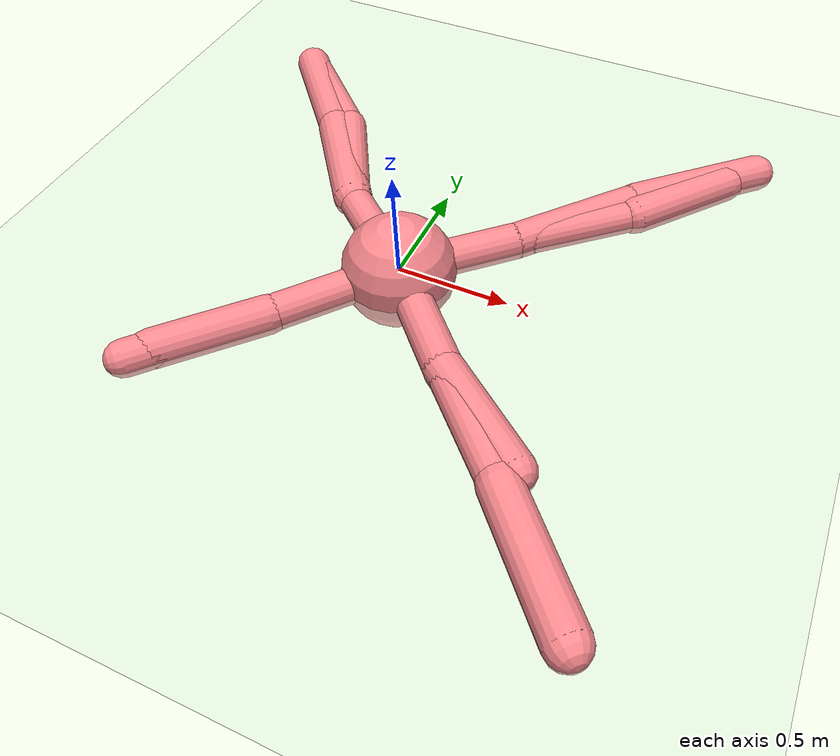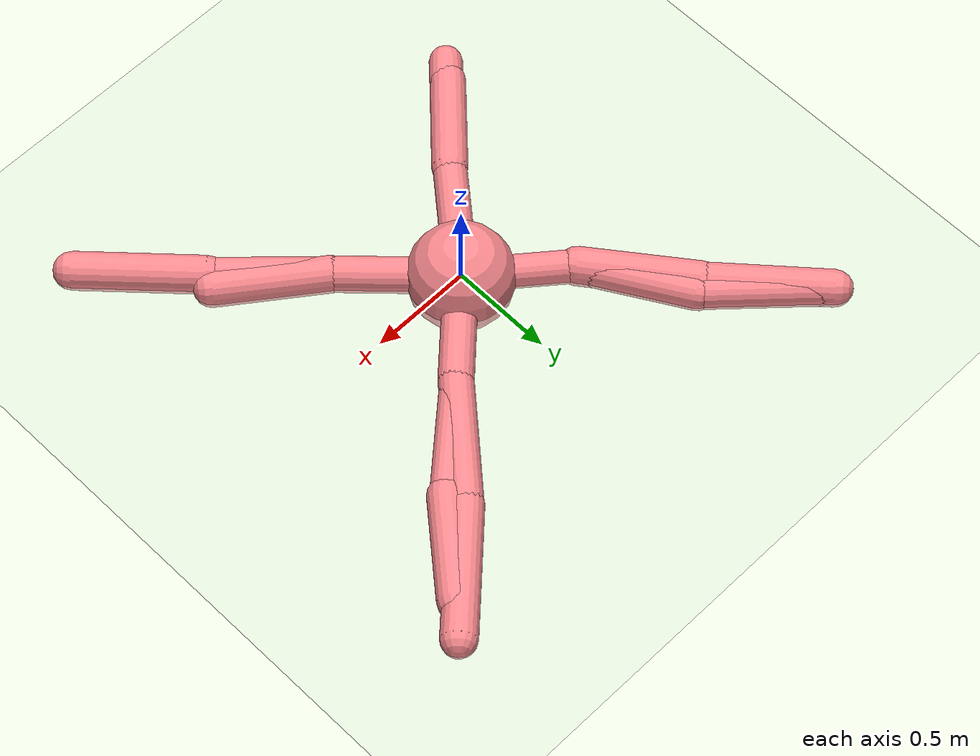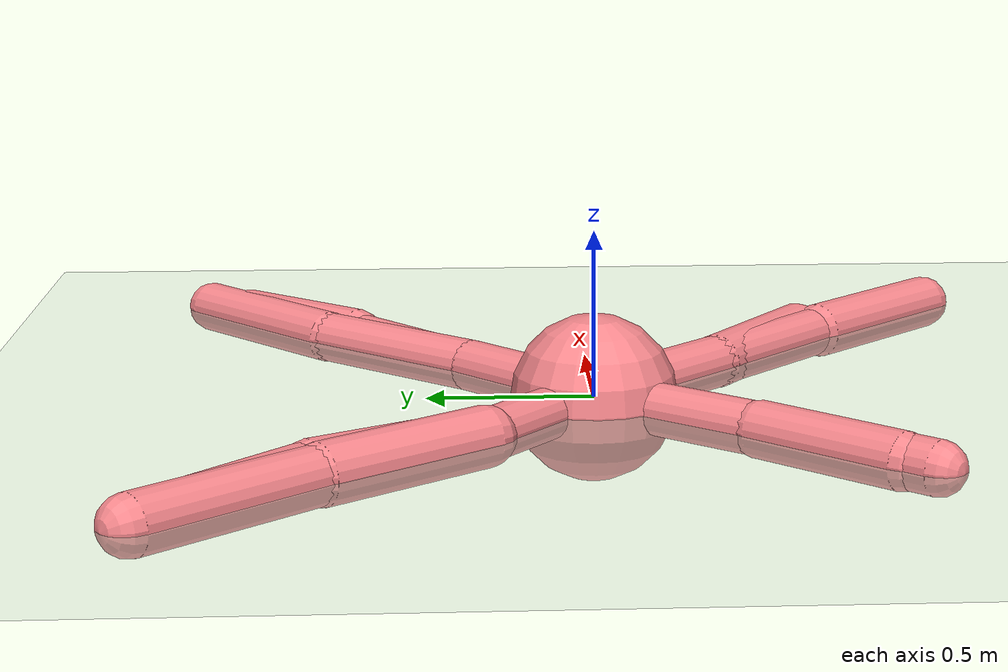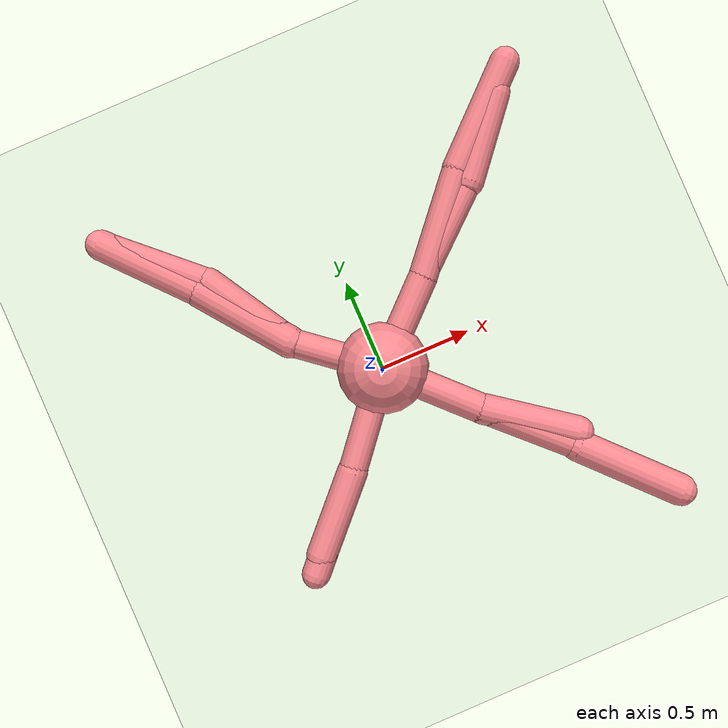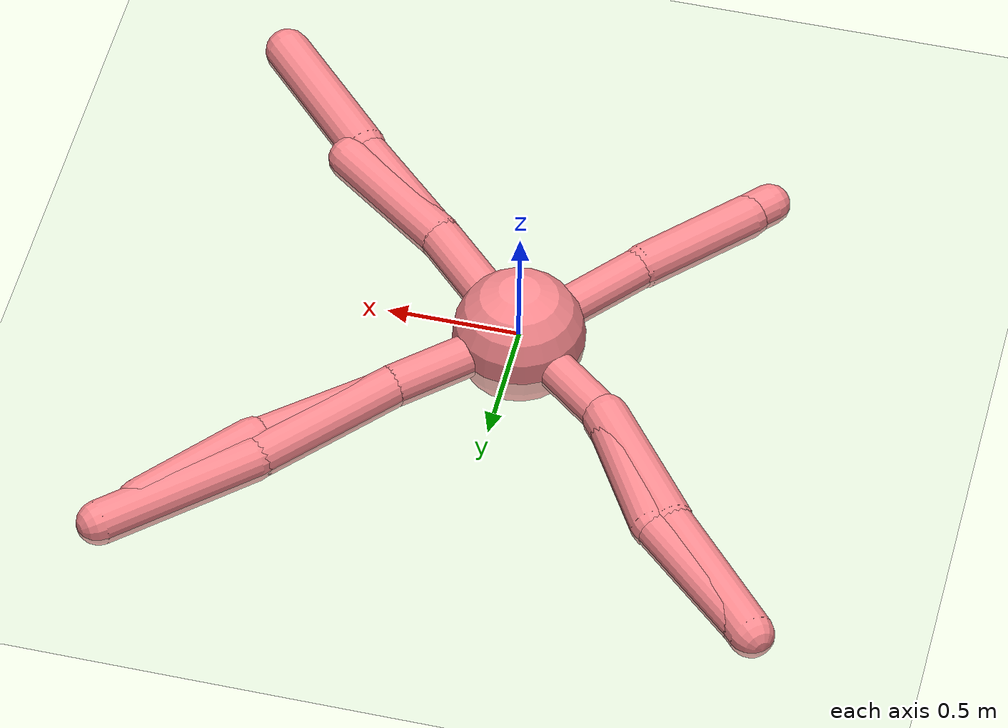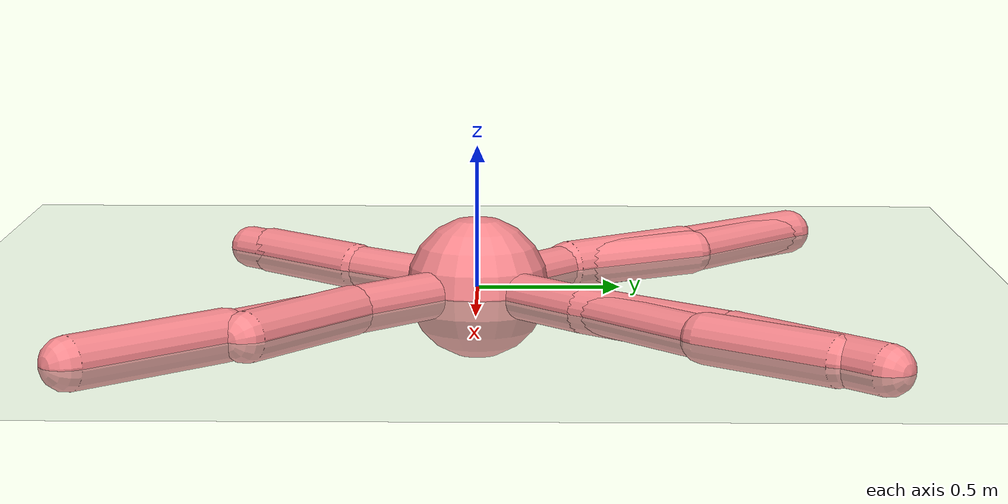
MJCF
<mujoco model="ant">
  <compiler inertiafromgeom="true" angle="degree"/>
  <option timestep="0.016" iterations="50" tolerance="1e-10" solver="Newton" jacobian="dense" cone="pyramidal"/>
  <default>
    <joint armature="1" damping="0.1" limited="true"/>
    <geom condim="3" density="5.0" friction="1.5 0.1 0.1" margin="0.01" rgba=".98 .54 .56 1."/>
  </default>
  <visual>
    <headlight ambient=".1 .1 .1" diffuse=".6 .6 .6" specular="0.3 0.3 0.3"/>
    <map znear=".01"/>
    <quality shadowsize="16384"/>
  </visual>
  <worldbody>
    <light cutoff="100" diffuse="1 1 1" dir="-0 0 -1.3" directional="true" exponent="1" pos="0 0 1.3" specular=".1 .1 .1"/>
    <geom condim="3" name="floor" pos="0 0 0" rgba="0.8 0.9 0.8 1" size="200 200 .125" type="plane" material="grid_new"/>
    <body name="0" pos="0 0 0">
      <camera name="track" mode="trackcom" pos="0 -3 0.3" xyaxes="1 0 0 0 0 1"/>
      <geom pos="0 0 0" size="0.25" type="sphere"/>
      <freejoint name="root"/>
      <body name="1" pos="0 0 0">
        <joint axis="-0.707107 0.707107 0" name="1_joint" pos="0 0 0" range="-30 30" type="hinge"/>
        <geom fromto="-0.001043 -0.000965 0 0.393879 0.364498 0" size="0.080781" type="capsule"/>
        <body name="11" pos="0.393879 0.364498 0">
          <joint axis="-0.707107 0.707107 0" name="11_joint" pos="0 0 0" range="-30 30" type="hinge"/>
          <geom fromto="-0.005237 -0.004529 0 0.431678 0.373332 0" size="0.071752" type="capsule"/>
          <body name="111" pos="0.431678 0.373332 0">
            <joint axis="-0.707107 0.707107 0" name="111_joint" pos="0 0 0" range="-30 30" type="hinge"/>
            <geom fromto="-0.000903 -0.001085 0 0.321075 0.385783 0" size="0.084262" type="capsule"/>
          </body>
        </body>
        <body name="21" pos="0.393879 0.364498 0">
          <joint axis="-0.707107 0.707107 0" name="21_joint" pos="0 0 0" range="-30 30" type="hinge"/>
          <geom fromto="-0.005479 -0.006318 0 0.401707 0.463218 0" size="0.080084" type="capsule"/>
          <body name="121" pos="0.401707 0.463218 0">
            <joint axis="-0.707107 0.707107 0" name="121_joint" pos="0 0 0" range="-30 30" type="hinge"/>
            <geom fromto="-0.000305 -0.000281 0 0.466244 0.428666 0" size="0.083128" type="capsule"/>
          </body>
        </body>
      </body>
      <body name="2" pos="0 0 0">
        <joint axis="-0.707107 -0.707107 0" name="2_joint" pos="0 0 0" range="-30 30" type="hinge"/>
        <geom fromto="0.000015 -0.000012 0 -0.403474 0.328274 0" size="0.077125" type="capsule"/>
        <body name="12" pos="-0.403474 0.328274 0">
          <joint axis="-0.707107 -0.707107 0" name="12_joint" pos="0 0 0" range="-30 30" type="hinge"/>
          <geom fromto="0.000656 -0.001116 0 -0.276795 0.47073 0" size="0.081357" type="capsule"/>
          <body name="112" pos="-0.276795 0.47073 0">
            <joint axis="-0.707107 -0.707107 0" name="112_joint" pos="0 0 0" range="-30 30" type="hinge"/>
            <geom fromto="0.000224 -0.000208 0 -0.414442 0.385131 0" size="0.076021" type="capsule"/>
          </body>
        </body>
        <body name="22" pos="-0.403474 0.328274 0">
          <joint axis="-0.707107 -0.707107 0" name="22_joint" pos="0 0 0" range="-30 30" type="hinge"/>
          <geom fromto="0.000546 -0.000716 0 -0.336055 0.440683 0" size="0.089314" type="capsule"/>
          <body name="122" pos="-0.336055 0.440683 0">
            <joint axis="-0.707107 -0.707107 0" name="122_joint" pos="0 0 0" range="-30 30" type="hinge"/>
            <geom fromto="0.004998 -0.005667 0 -0.390586 0.44287 0" size="0.084882" type="capsule"/>
          </body>
        </body>
      </body>
      <body name="3" pos="0 0 0">
        <joint axis="0.707107 -0.707107 0" name="3_joint" pos="0 0 0" range="-30 30" type="hinge"/>
        <geom fromto="0.000092 0.00011 0 -0.371355 -0.446097 0" size="0.078578" type="capsule"/>
        <body name="13" pos="-0.371355 -0.446097 0">
          <joint axis="0.707107 -0.707107 0" name="13_joint" pos="0 0 0" range="-30 30" type="hinge"/>
          <geom fromto="0.00114 0.001197 0 -0.329252 -0.345634 0" size="0.084112" type="capsule"/>
        </body>
        <body name="23" pos="-0.371355 -0.446097 0">
          <joint axis="0.707107 -0.707107 0" name="23_joint" pos="0 0 0" range="-30 30" type="hinge"/>
          <geom fromto="0.000441 0.000475 0 -0.396634 -0.426613 0" size="0.078753" type="capsule"/>
        </body>
      </body>
      <body name="4" pos="0 0 0">
        <joint axis="0.707107 0.707107 0" name="4_joint" pos="0 0 0" range="-30 30" type="hinge"/>
        <geom fromto="-0.001908 0.001953 0 0.404316 -0.413789 0" size="0.08265" type="capsule"/>
        <body name="14" pos="0.404316 -0.413789 0">
          <joint axis="0.707107 0.707107 0" name="14_joint" pos="0 0 0" range="-30 30" type="hinge"/>
          <geom fromto="-0.00028 0.000274 0 0.39255 -0.384544 0" size="0.07847" type="capsule"/>
          <body name="114" pos="0.39255 -0.384544 0">
            <joint axis="0.707107 0.707107 0" name="114_joint" pos="0 0 0" range="-30 30" type="hinge"/>
            <geom fromto="-0.000006 0.000007 0 0.374696 -0.403682 0" size="0.072479" type="capsule"/>
          </body>
          <body name="214" pos="0.39255 -0.384544 0">
            <joint axis="0.707107 0.707107 0" name="214_joint" pos="0 0 0" range="-30 30" type="hinge"/>
            <geom fromto="-0.000238 0.000253 0 0.411364 -0.438021 0" size="0.088267" type="capsule"/>
          </body>
        </body>
        <body name="24" pos="0.404316 -0.413789 0">
          <joint axis="0.707107 0.707107 0" name="24_joint" pos="0 0 0" range="-30 30" type="hinge"/>
          <geom fromto="-0.000824 0.000613 0 0.425732 -0.316719 0" size="0.08497" type="capsule"/>
        </body>
      </body>
    </body>
  </worldbody>
  <actuator>
    <motor ctrllimited="true" ctrlrange="-1.0 1.0" joint="1_joint" gear="105.621378" name="1_joint"/>
    <motor ctrllimited="true" ctrlrange="-1.0 1.0" joint="2_joint" gear="160.862416" name="2_joint"/>
    <motor ctrllimited="true" ctrlrange="-1.0 1.0" joint="3_joint" gear="158.372075" name="3_joint"/>
    <motor ctrllimited="true" ctrlrange="-1.0 1.0" joint="4_joint" gear="97.647958" name="4_joint"/>
    <motor ctrllimited="true" ctrlrange="-1.0 1.0" joint="11_joint" gear="147.209223" name="11_joint"/>
    <motor ctrllimited="true" ctrlrange="-1.0 1.0" joint="12_joint" gear="111.409265" name="12_joint"/>
    <motor ctrllimited="true" ctrlrange="-1.0 1.0" joint="22_joint" gear="136.068817" name="22_joint"/>
    <motor ctrllimited="true" ctrlrange="-1.0 1.0" joint="14_joint" gear="150.811124" name="14_joint"/>
    <motor ctrllimited="true" ctrlrange="-1.0 1.0" joint="21_joint" gear="209.30669" name="21_joint"/>
    <motor ctrllimited="true" ctrlrange="-1.0 1.0" joint="13_joint" gear="139.030823" name="13_joint"/>
    <motor ctrllimited="true" ctrlrange="-1.0 1.0" joint="24_joint" gear="140.517361" name="24_joint"/>
    <motor ctrllimited="true" ctrlrange="-1.0 1.0" joint="111_joint" gear="161.446684" name="111_joint"/>
    <motor ctrllimited="true" ctrlrange="-1.0 1.0" joint="114_joint" gear="151.815381" name="114_joint"/>
    <motor ctrllimited="true" ctrlrange="-1.0 1.0" joint="23_joint" gear="162.580047" name="23_joint"/>
    <motor ctrllimited="true" ctrlrange="-1.0 1.0" joint="112_joint" gear="108.498906" name="112_joint"/>
    <motor ctrllimited="true" ctrlrange="-1.0 1.0" joint="122_joint" gear="153.094419" name="122_joint"/>
    <motor ctrllimited="true" ctrlrange="-1.0 1.0" joint="214_joint" gear="189.094658" name="214_joint"/>
    <motor ctrllimited="true" ctrlrange="-1.0 1.0" joint="121_joint" gear="177.489201" name="121_joint"/>
  </actuator>
  <asset>
    <texture type="skybox" builtin="gradient" rgb1=".4 .5 .6" rgb2="0 0 0" width="100" height="100"/>
    <texture builtin="flat" height="1278" mark="cross" markrgb="1 1 1" name="texgeom" random="0.01" rgb1="0.8 0.6 0.4" rgb2="0.8 0.6 0.4" type="cube" width="127"/>
    <texture builtin="checker" height="100" name="texplane" rgb1="0 0 0" rgb2="0.8 0.8 0.8" type="2d" width="100"/>
    <material name="MatPlane" reflectance="0.5" shininess="1" specular="1" texrepeat="60 60" texture="texplane"/>
    <material name="geom" texture="texgeom" texuniform="true"/>
    <texture name="grid_new" type="2d" builtin="checker" rgb1=".1 .3 .2" rgb2=".2 .4 .3" width="1000" height="1000" mark="none" markrgb=".8 .6 .4"/>
    <material name="grid_new" texture="grid_new" texrepeat="0.2 0.2" texuniform="true" reflectance=".2"/>
  </asset>
</mujoco>
